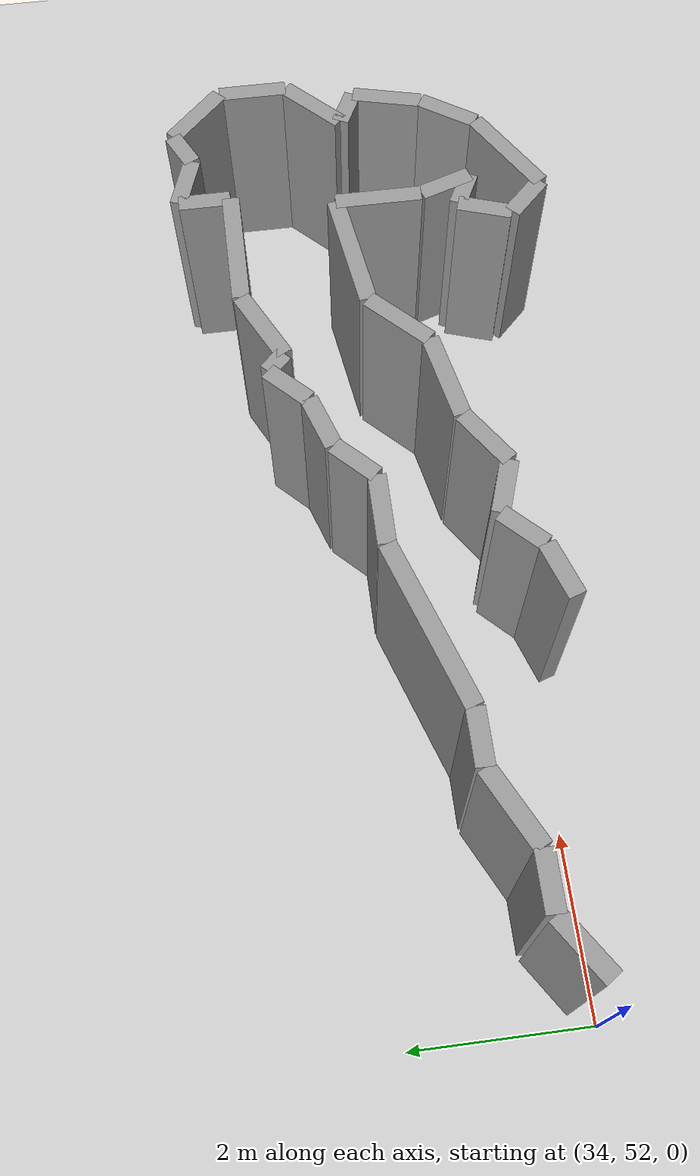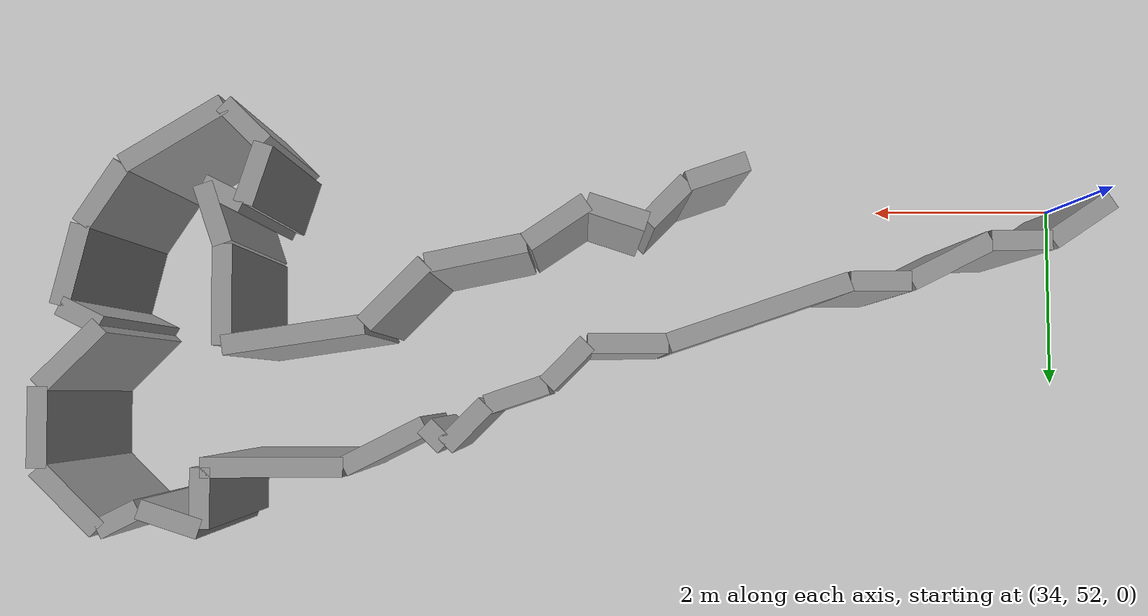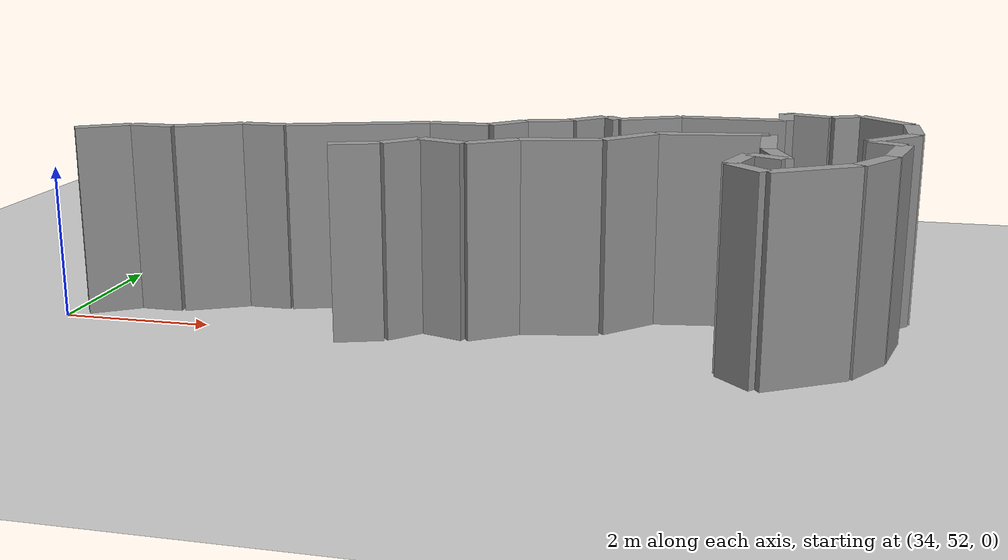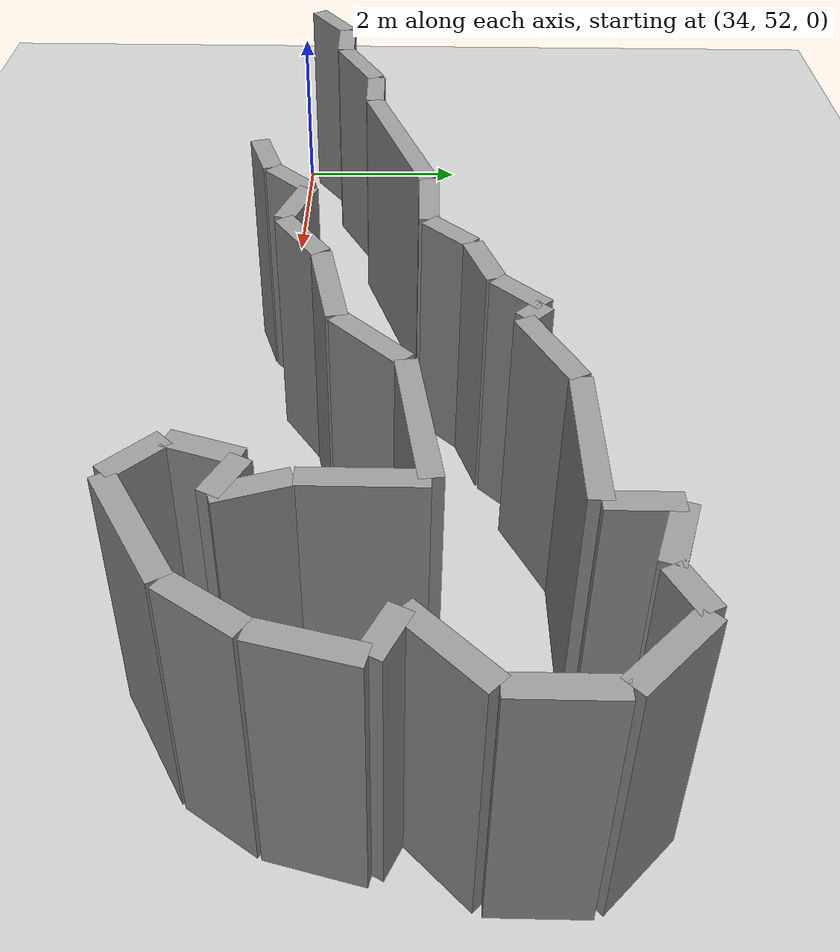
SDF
<sdf version="1.4">
 <world name="1_wall">
  <model name="ground_plane">
   <static>1</static>
   <link name="link">
    <collision name="collision">
     <geometry><plane><normal>0 0 1</normal><size>1000 1000</size></plane></geometry>
     <surface><friction><ode><mu>100</mu><mu2>50</mu2></ode></friction></surface>
    </collision>
    <visual name="visual">
     <cast_shadows>0</cast_shadows>
     <geometry><plane><normal>0 0 1</normal><size>10000 10000</size></plane></geometry>
     <material>
      <script><uri>file://media/materials/scripts/gazebo.material</uri><name>Gazebo/Grey</name></script>
     </material>
    </visual>
    <velocity_decay><linear>0</linear><angular>0</angular></velocity_decay>
   </link>
  </model>
  <model name="Wall_517">
   <static>1</static>
   <link name="Wall_517">
    <collision name="Wall_Collision_517">
     <geometry><box><size>0.632455532034 0.2 2.5</size></box></geometry>
     <pose>0 0 1.25 0 -0 0</pose>
    </collision>
    <visual name="Wall_Visual_517">
     <pose>0 0 1.25 0 -0 0</pose>
     <geometry><box><size>0.632455532034 0.2 2.5</size></box></geometry>
     <material>
      <script><uri>file://media/materials/scripts/gazebo.material</uri><name>Gazebo/Grey</name></script>
     </material>
    </visual>
    <velocity_decay><linear>0</linear><angular>0</angular></velocity_decay>
    <pose>38.1 51.9 0 0 0 0.321750554397</pose>
   </link>
  </model>
  <model name="Wall_518">
   <static>1</static>
   <link name="Wall_518">
    <collision name="Wall_Collision_518">
     <geometry><box><size>0.565685424949 0.2 2.5</size></box></geometry>
     <pose>0 0 1.25 0 -0 0</pose>
    </collision>
    <visual name="Wall_Visual_518">
     <pose>0 0 1.25 0 -0 0</pose>
     <geometry><box><size>0.565685424949 0.2 2.5</size></box></geometry>
     <material>
      <script><uri>file://media/materials/scripts/gazebo.material</uri><name>Gazebo/Grey</name></script>
     </material>
    </visual>
    <velocity_decay><linear>0</linear><angular>0</angular></velocity_decay>
    <pose>38.6 52.2 0 0 0 0.785398163397</pose>
   </link>
  </model>
  <model name="Wall_519">
   <static>1</static>
   <link name="Wall_519">
    <collision name="Wall_Collision_519">
     <geometry><box><size>0.632455532034 0.2 2.5</size></box></geometry>
     <pose>0 0 1.25 0 -0 0</pose>
    </collision>
    <visual name="Wall_Visual_519">
     <pose>0 0 1.25 0 -0 0</pose>
     <geometry><box><size>0.632455532034 0.2 2.5</size></box></geometry>
     <material>
      <script><uri>file://media/materials/scripts/gazebo.material</uri><name>Gazebo/Grey</name></script>
     </material>
    </visual>
    <velocity_decay><linear>0</linear><angular>0</angular></velocity_decay>
    <pose>39.1 52.3 0 0 0 -0.321750554397</pose>
   </link>
  </model>
  <model name="Wall_520">
   <static>1</static>
   <link name="Wall_520">
    <collision name="Wall_Collision_520">
     <geometry><box><size>0.721110255093 0.2 2.5</size></box></geometry>
     <pose>0 0 1.25 0 -0 0</pose>
    </collision>
    <visual name="Wall_Visual_520">
     <pose>0 0 1.25 0 -0 0</pose>
     <geometry><box><size>0.721110255093 0.2 2.5</size></box></geometry>
     <material>
      <script><uri>file://media/materials/scripts/gazebo.material</uri><name>Gazebo/Grey</name></script>
     </material>
    </visual>
    <velocity_decay><linear>0</linear><angular>0</angular></velocity_decay>
    <pose>39.7 52.4 0 0 0 0.588002603548</pose>
   </link>
  </model>
  <model name="Wall_521">
   <static>1</static>
   <link name="Wall_521">
    <collision name="Wall_Collision_521">
     <geometry><box><size>1.01980390272 0.2 2.5</size></box></geometry>
     <pose>0 0 1.25 0 -0 0</pose>
    </collision>
    <visual name="Wall_Visual_521">
     <pose>0 0 1.25 0 -0 0</pose>
     <geometry><box><size>1.01980390272 0.2 2.5</size></box></geometry>
     <material>
      <script><uri>file://media/materials/scripts/gazebo.material</uri><name>Gazebo/Grey</name></script>
     </material>
    </visual>
    <velocity_decay><linear>0</linear><angular>0</angular></velocity_decay>
    <pose>40.5 52.7 0 0 0 0.19739555985</pose>
   </link>
  </model>
  <model name="Wall_522">
   <static>1</static>
   <link name="Wall_522">
    <collision name="Wall_Collision_522">
     <geometry><box><size>0.848528137424 0.2 2.5</size></box></geometry>
     <pose>0 0 1.25 0 -0 0</pose>
    </collision>
    <visual name="Wall_Visual_522">
     <pose>0 0 1.25 0 -0 0</pose>
     <geometry><box><size>0.848528137424 0.2 2.5</size></box></geometry>
     <material>
      <script><uri>file://media/materials/scripts/gazebo.material</uri><name>Gazebo/Grey</name></script>
     </material>
    </visual>
    <velocity_decay><linear>0</linear><angular>0</angular></velocity_decay>
    <pose>41.3 53.1 0 0 0 0.785398163397</pose>
   </link>
  </model>
  <model name="Wall_523">
   <static>1</static>
   <link name="Wall_523">
    <collision name="Wall_Collision_523">
     <geometry><box><size>1.41421356237 0.2 2.5</size></box></geometry>
     <pose>0 0 1.25 0 -0 0</pose>
    </collision>
    <visual name="Wall_Visual_523">
     <pose>0 0 1.25 0 -0 0</pose>
     <geometry><box><size>1.41421356237 0.2 2.5</size></box></geometry>
     <material>
      <script><uri>file://media/materials/scripts/gazebo.material</uri><name>Gazebo/Grey</name></script>
     </material>
    </visual>
    <velocity_decay><linear>0</linear><angular>0</angular></velocity_decay>
    <pose>42.3 53.5 0 0 0 0.141897054604</pose>
   </link>
  </model>
  <model name="Wall_524">
   <static>1</static>
   <link name="Wall_524">
    <collision name="Wall_Collision_524">
     <geometry><box><size>1.0 0.2 2.5</size></box></geometry>
     <pose>0 0 1.25 0 -0 0</pose>
    </collision>
    <visual name="Wall_Visual_524">
     <pose>0 0 1.25 0 -0 0</pose>
     <geometry><box><size>1.0 0.2 2.5</size></box></geometry>
     <material>
      <script><uri>file://media/materials/scripts/gazebo.material</uri><name>Gazebo/Grey</name></script>
     </material>
    </visual>
    <velocity_decay><linear>0</linear><angular>0</angular></velocity_decay>
    <pose>43.0 53.1 0 0 0 -1.57079632679</pose>
   </link>
  </model>
  <model name="Wall_525">
   <static>1</static>
   <link name="Wall_525">
    <collision name="Wall_Collision_525">
     <geometry><box><size>0.632455532034 0.2 2.5</size></box></geometry>
     <pose>0 0 1.25 0 -0 0</pose>
    </collision>
    <visual name="Wall_Visual_525">
     <pose>0 0 1.25 0 -0 0</pose>
     <geometry><box><size>0.632455532034 0.2 2.5</size></box></geometry>
     <material>
      <script><uri>file://media/materials/scripts/gazebo.material</uri><name>Gazebo/Grey</name></script>
     </material>
    </visual>
    <velocity_decay><linear>0</linear><angular>0</angular></velocity_decay>
    <pose>43.1 52.3 0 0 0 -1.2490457724</pose>
   </link>
  </model>
  <model name="Wall_526">
   <static>1</static>
   <link name="Wall_526">
    <collision name="Wall_Collision_526">
     <geometry><box><size>0.4472135955 0.2 2.5</size></box></geometry>
     <pose>0 0 1.25 0 -0 0</pose>
    </collision>
    <visual name="Wall_Visual_526">
     <pose>0 0 1.25 0 -0 0</pose>
     <geometry><box><size>0.4472135955 0.2 2.5</size></box></geometry>
     <material>
      <script><uri>file://media/materials/scripts/gazebo.material</uri><name>Gazebo/Grey</name></script>
     </material>
    </visual>
    <velocity_decay><linear>0</linear><angular>0</angular></velocity_decay>
    <pose>43.0 52.1 0 0 0 2.67794504459</pose>
   </link>
  </model>
  <model name="Wall_527">
   <static>1</static>
   <link name="Wall_527">
    <collision name="Wall_Collision_527">
     <geometry><box><size>0.632455532034 0.2 2.5</size></box></geometry>
     <pose>0 0 1.25 0 -0 0</pose>
    </collision>
    <visual name="Wall_Visual_527">
     <pose>0 0 1.25 0 -0 0</pose>
     <geometry><box><size>0.632455532034 0.2 2.5</size></box></geometry>
     <material>
      <script><uri>file://media/materials/scripts/gazebo.material</uri><name>Gazebo/Grey</name></script>
     </material>
    </visual>
    <velocity_decay><linear>0</linear><angular>0</angular></velocity_decay>
    <pose>42.7 51.9 0 0 0 -1.89254688119</pose>
   </link>
  </model>
  <model name="Wall_528">
   <static>1</static>
   <link name="Wall_528">
    <collision name="Wall_Collision_528">
     <geometry><box><size>0.565685424949 0.2 2.5</size></box></geometry>
     <pose>0 0 1.25 0 -0 0</pose>
    </collision>
    <visual name="Wall_Visual_528">
     <pose>0 0 1.25 0 -0 0</pose>
     <geometry><box><size>0.565685424949 0.2 2.5</size></box></geometry>
     <material>
      <script><uri>file://media/materials/scripts/gazebo.material</uri><name>Gazebo/Grey</name></script>
     </material>
    </visual>
    <velocity_decay><linear>0</linear><angular>0</angular></velocity_decay>
    <pose>42.8 51.4 0 0 0 -0.785398163397</pose>
   </link>
  </model>
  <model name="Wall_529">
   <static>1</static>
   <link name="Wall_529">
    <collision name="Wall_Collision_529">
     <geometry><box><size>1.16619037897 0.2 2.5</size></box></geometry>
     <pose>0 0 1.25 0 -0 0</pose>
    </collision>
    <visual name="Wall_Visual_529">
     <pose>0 0 1.25 0 -0 0</pose>
     <geometry><box><size>1.16619037897 0.2 2.5</size></box></geometry>
     <material>
      <script><uri>file://media/materials/scripts/gazebo.material</uri><name>Gazebo/Grey</name></script>
     </material>
    </visual>
    <velocity_decay><linear>0</linear><angular>0</angular></velocity_decay>
    <pose>43.5 51.5 0 0 0 0.540419500271</pose>
   </link>
  </model>
  <model name="Wall_530">
   <static>1</static>
   <link name="Wall_530">
    <collision name="Wall_Collision_530">
     <geometry><box><size>0.721110255093 0.2 2.5</size></box></geometry>
     <pose>0 0 1.25 0 -0 0</pose>
    </collision>
    <visual name="Wall_Visual_530">
     <pose>0 0 1.25 0 -0 0</pose>
     <geometry><box><size>0.721110255093 0.2 2.5</size></box></geometry>
     <material>
      <script><uri>file://media/materials/scripts/gazebo.material</uri><name>Gazebo/Grey</name></script>
     </material>
    </visual>
    <velocity_decay><linear>0</linear><angular>0</angular></velocity_decay>
    <pose>44.2 52.1 0 0 0 0.982793723247</pose>
   </link>
  </model>
  <model name="Wall_531">
   <static>1</static>
   <link name="Wall_531">
    <collision name="Wall_Collision_531">
     <geometry><box><size>0.824621125124 0.2 2.5</size></box></geometry>
     <pose>0 0 1.25 0 -0 0</pose>
    </collision>
    <visual name="Wall_Visual_531">
     <pose>0 0 1.25 0 -0 0</pose>
     <geometry><box><size>0.824621125124 0.2 2.5</size></box></geometry>
     <material>
      <script><uri>file://media/materials/scripts/gazebo.material</uri><name>Gazebo/Grey</name></script>
     </material>
    </visual>
    <velocity_decay><linear>0</linear><angular>0</angular></velocity_decay>
    <pose>44.5 52.8 0 0 0 1.32581766367</pose>
   </link>
  </model>
  <model name="Wall_532">
   <static>1</static>
   <link name="Wall_532">
    <collision name="Wall_Collision_532">
     <geometry><box><size>0.4472135955 0.2 2.5</size></box></geometry>
     <pose>0 0 1.25 0 -0 0</pose>
    </collision>
    <visual name="Wall_Visual_532">
     <pose>0 0 1.25 0 -0 0</pose>
     <geometry><box><size>0.4472135955 0.2 2.5</size></box></geometry>
     <material>
      <script><uri>file://media/materials/scripts/gazebo.material</uri><name>Gazebo/Grey</name></script>
     </material>
    </visual>
    <velocity_decay><linear>0</linear><angular>0</angular></velocity_decay>
    <pose>44.4 53.3 0 0 0 2.67794504459</pose>
   </link>
  </model>
  <model name="Wall_533">
   <static>1</static>
   <link name="Wall_533">
    <collision name="Wall_Collision_533">
     <geometry><box><size>0.848528137424 0.2 2.5</size></box></geometry>
     <pose>0 0 1.25 0 -0 0</pose>
    </collision>
    <visual name="Wall_Visual_533">
     <pose>0 0 1.25 0 -0 0</pose>
     <geometry><box><size>0.848528137424 0.2 2.5</size></box></geometry>
     <material>
      <script><uri>file://media/materials/scripts/gazebo.material</uri><name>Gazebo/Grey</name></script>
     </material>
    </visual>
    <velocity_decay><linear>0</linear><angular>0</angular></velocity_decay>
    <pose>44.5 53.7 0 0 0 0.785398163397</pose>
   </link>
  </model>
  <model name="Wall_534">
   <static>1</static>
   <link name="Wall_534">
    <collision name="Wall_Collision_534">
     <geometry><box><size>0.8 0.2 2.5</size></box></geometry>
     <pose>0 0 1.25 0 -0 0</pose>
    </collision>
    <visual name="Wall_Visual_534">
     <pose>0 0 1.25 0 -0 0</pose>
     <geometry><box><size>0.8 0.2 2.5</size></box></geometry>
     <material>
      <script><uri>file://media/materials/scripts/gazebo.material</uri><name>Gazebo/Grey</name></script>
     </material>
    </visual>
    <velocity_decay><linear>0</linear><angular>0</angular></velocity_decay>
    <pose>44.8 54.4 0 0 0 1.57079632679</pose>
   </link>
  </model>
  <model name="Wall_535">
   <static>1</static>
   <link name="Wall_535">
    <collision name="Wall_Collision_535">
     <geometry><box><size>0.848528137424 0.2 2.5</size></box></geometry>
     <pose>0 0 1.25 0 -0 0</pose>
    </collision>
    <visual name="Wall_Visual_535">
     <pose>0 0 1.25 0 -0 0</pose>
     <geometry><box><size>0.848528137424 0.2 2.5</size></box></geometry>
     <material>
      <script><uri>file://media/materials/scripts/gazebo.material</uri><name>Gazebo/Grey</name></script>
     </material>
    </visual>
    <velocity_decay><linear>0</linear><angular>0</angular></velocity_decay>
    <pose>44.5 55.1 0 0 0 2.35619449019</pose>
   </link>
  </model>
  <model name="Wall_536">
   <static>1</static>
   <link name="Wall_536">
    <collision name="Wall_Collision_536">
     <geometry><box><size>0.4472135955 0.2 2.5</size></box></geometry>
     <pose>0 0 1.25 0 -0 0</pose>
    </collision>
    <visual name="Wall_Visual_536">
     <pose>0 0 1.25 0 -0 0</pose>
     <geometry><box><size>0.4472135955 0.2 2.5</size></box></geometry>
     <material>
      <script><uri>file://media/materials/scripts/gazebo.material</uri><name>Gazebo/Grey</name></script>
     </material>
    </visual>
    <velocity_decay><linear>0</linear><angular>0</angular></velocity_decay>
    <pose>44.0 55.3 0 0 0 -2.67794504459</pose>
   </link>
  </model>
  <model name="Wall_537">
   <static>1</static>
   <link name="Wall_537">
    <collision name="Wall_Collision_537">
     <geometry><box><size>0.632455532034 0.2 2.5</size></box></geometry>
     <pose>0 0 1.25 0 -0 0</pose>
    </collision>
    <visual name="Wall_Visual_537">
     <pose>0 0 1.25 0 -0 0</pose>
     <geometry><box><size>0.632455532034 0.2 2.5</size></box></geometry>
     <material>
      <script><uri>file://media/materials/scripts/gazebo.material</uri><name>Gazebo/Grey</name></script>
     </material>
    </visual>
    <velocity_decay><linear>0</linear><angular>0</angular></velocity_decay>
    <pose>43.5 55.3 0 0 0 2.81984209919</pose>
   </link>
  </model>
  <model name="Wall_538">
   <static>1</static>
   <link name="Wall_538">
    <collision name="Wall_Collision_538">
     <geometry><box><size>0.6 0.2 2.5</size></box></geometry>
     <pose>0 0 1.25 0 -0 0</pose>
    </collision>
    <visual name="Wall_Visual_538">
     <pose>0 0 1.25 0 -0 0</pose>
     <geometry><box><size>0.6 0.2 2.5</size></box></geometry>
     <material>
      <script><uri>file://media/materials/scripts/gazebo.material</uri><name>Gazebo/Grey</name></script>
     </material>
    </visual>
    <velocity_decay><linear>0</linear><angular>0</angular></velocity_decay>
    <pose>43.2 55.1 0 0 0 -1.57079632679</pose>
   </link>
  </model>
  <model name="Wall_539">
   <static>1</static>
   <link name="Wall_539">
    <collision name="Wall_Collision_539">
     <geometry><box><size>1.4 0.2 2.5</size></box></geometry>
     <pose>0 0 1.25 0 -0 0</pose>
    </collision>
    <visual name="Wall_Visual_539">
     <pose>0 0 1.25 0 -0 0</pose>
     <geometry><box><size>1.4 0.2 2.5</size></box></geometry>
     <material>
      <script><uri>file://media/materials/scripts/gazebo.material</uri><name>Gazebo/Grey</name></script>
     </material>
    </visual>
    <velocity_decay><linear>0</linear><angular>0</angular></velocity_decay>
    <pose>42.5 54.8 0 0 0 3.14159265359</pose>
   </link>
  </model>
  <model name="Wall_540">
   <static>1</static>
   <link name="Wall_540">
    <collision name="Wall_Collision_540">
     <geometry><box><size>0.894427191 0.2 2.5</size></box></geometry>
     <pose>0 0 1.25 0 -0 0</pose>
    </collision>
    <visual name="Wall_Visual_540">
     <pose>0 0 1.25 0 -0 0</pose>
     <geometry><box><size>0.894427191 0.2 2.5</size></box></geometry>
     <material>
      <script><uri>file://media/materials/scripts/gazebo.material</uri><name>Gazebo/Grey</name></script>
     </material>
    </visual>
    <velocity_decay><linear>0</linear><angular>0</angular></velocity_decay>
    <pose>41.4 54.6 0 0 0 -2.67794504459</pose>
   </link>
  </model>
  <model name="Wall_541">
   <static>1</static>
   <link name="Wall_541">
    <collision name="Wall_Collision_541">
     <geometry><box><size>0.282842712475 0.2 2.5</size></box></geometry>
     <pose>0 0 1.25 0 -0 0</pose>
    </collision>
    <visual name="Wall_Visual_541">
     <pose>0 0 1.25 0 -0 0</pose>
     <geometry><box><size>0.282842712475 0.2 2.5</size></box></geometry>
     <material>
      <script><uri>file://media/materials/scripts/gazebo.material</uri><name>Gazebo/Grey</name></script>
     </material>
    </visual>
    <velocity_decay><linear>0</linear><angular>0</angular></velocity_decay>
    <pose>40.9 54.5 0 0 0 2.35619449019</pose>
   </link>
  </model>
  <model name="Wall_542">
   <static>1</static>
   <link name="Wall_542">
    <collision name="Wall_Collision_542">
     <geometry><box><size>0.565685424949 0.2 2.5</size></box></geometry>
     <pose>0 0 1.25 0 -0 0</pose>
    </collision>
    <visual name="Wall_Visual_542">
     <pose>0 0 1.25 0 -0 0</pose>
     <geometry><box><size>0.565685424949 0.2 2.5</size></box></geometry>
     <material>
      <script><uri>file://media/materials/scripts/gazebo.material</uri><name>Gazebo/Grey</name></script>
     </material>
    </visual>
    <velocity_decay><linear>0</linear><angular>0</angular></velocity_decay>
    <pose>40.6 54.4 0 0 0 -2.35619449019</pose>
   </link>
  </model>
  <model name="Wall_543">
   <static>1</static>
   <link name="Wall_543">
    <collision name="Wall_Collision_543">
     <geometry><box><size>0.632455532034 0.2 2.5</size></box></geometry>
     <pose>0 0 1.25 0 -0 0</pose>
    </collision>
    <visual name="Wall_Visual_543">
     <pose>0 0 1.25 0 -0 0</pose>
     <geometry><box><size>0.632455532034 0.2 2.5</size></box></geometry>
     <material>
      <script><uri>file://media/materials/scripts/gazebo.material</uri><name>Gazebo/Grey</name></script>
     </material>
    </visual>
    <velocity_decay><linear>0</linear><angular>0</angular></velocity_decay>
    <pose>40.1 54.1 0 0 0 -2.81984209919</pose>
   </link>
  </model>
  <model name="Wall_544">
   <static>1</static>
   <link name="Wall_544">
    <collision name="Wall_Collision_544">
     <geometry><box><size>0.565685424949 0.2 2.5</size></box></geometry>
     <pose>0 0 1.25 0 -0 0</pose>
    </collision>
    <visual name="Wall_Visual_544">
     <pose>0 0 1.25 0 -0 0</pose>
     <geometry><box><size>0.565685424949 0.2 2.5</size></box></geometry>
     <material>
      <script><uri>file://media/materials/scripts/gazebo.material</uri><name>Gazebo/Grey</name></script>
     </material>
    </visual>
    <velocity_decay><linear>0</linear><angular>0</angular></velocity_decay>
    <pose>39.6 53.8 0 0 0 -2.35619449019</pose>
   </link>
  </model>
  <model name="Wall_545">
   <static>1</static>
   <link name="Wall_545">
    <collision name="Wall_Collision_545">
     <geometry><box><size>0.8 0.2 2.5</size></box></geometry>
     <pose>0 0 1.25 0 -0 0</pose>
    </collision>
    <visual name="Wall_Visual_545">
     <pose>0 0 1.25 0 -0 0</pose>
     <geometry><box><size>0.8 0.2 2.5</size></box></geometry>
     <material>
      <script><uri>file://media/materials/scripts/gazebo.material</uri><name>Gazebo/Grey</name></script>
     </material>
    </visual>
    <velocity_decay><linear>0</linear><angular>0</angular></velocity_decay>
    <pose>39.0 53.6 0 0 0 3.14159265359</pose>
   </link>
  </model>
  <model name="Wall_546">
   <static>1</static>
   <link name="Wall_546">
    <collision name="Wall_Collision_546">
     <geometry><box><size>1.8973665961 0.2 2.5</size></box></geometry>
     <pose>0 0 1.25 0 -0 0</pose>
    </collision>
    <visual name="Wall_Visual_546">
     <pose>0 0 1.25 0 -0 0</pose>
     <geometry><box><size>1.8973665961 0.2 2.5</size></box></geometry>
     <material>
      <script><uri>file://media/materials/scripts/gazebo.material</uri><name>Gazebo/Grey</name></script>
     </material>
    </visual>
    <velocity_decay><linear>0</linear><angular>0</angular></velocity_decay>
    <pose>37.7 53.3 0 0 0 -2.81984209919</pose>
   </link>
  </model>
  <model name="Wall_547">
   <static>1</static>
   <link name="Wall_547">
    <collision name="Wall_Collision_547">
     <geometry><box><size>0.6 0.2 2.5</size></box></geometry>
     <pose>0 0 1.25 0 -0 0</pose>
    </collision>
    <visual name="Wall_Visual_547">
     <pose>0 0 1.25 0 -0 0</pose>
     <geometry><box><size>0.6 0.2 2.5</size></box></geometry>
     <material>
      <script><uri>file://media/materials/scripts/gazebo.material</uri><name>Gazebo/Grey</name></script>
     </material>
    </visual>
    <velocity_decay><linear>0</linear><angular>0</angular></velocity_decay>
    <pose>36.5 53.0 0 0 0 3.14159265359</pose>
   </link>
  </model>
  <model name="Wall_548">
   <static>1</static>
   <link name="Wall_548">
    <collision name="Wall_Collision_548">
     <geometry><box><size>0.894427191 0.2 2.5</size></box></geometry>
     <pose>0 0 1.25 0 -0 0</pose>
    </collision>
    <visual name="Wall_Visual_548">
     <pose>0 0 1.25 0 -0 0</pose>
     <geometry><box><size>0.894427191 0.2 2.5</size></box></geometry>
     <material>
      <script><uri>file://media/materials/scripts/gazebo.material</uri><name>Gazebo/Grey</name></script>
     </material>
    </visual>
    <velocity_decay><linear>0</linear><angular>0</angular></velocity_decay>
    <pose>35.8 52.8 0 0 0 -2.67794504459</pose>
   </link>
  </model>
  <model name="Wall_549">
   <static>1</static>
   <link name="Wall_549">
    <collision name="Wall_Collision_549">
     <geometry><box><size>0.6 0.2 2.5</size></box></geometry>
     <pose>0 0 1.25 0 -0 0</pose>
    </collision>
    <visual name="Wall_Visual_549">
     <pose>0 0 1.25 0 -0 0</pose>
     <geometry><box><size>0.6 0.2 2.5</size></box></geometry>
     <material>
      <script><uri>file://media/materials/scripts/gazebo.material</uri><name>Gazebo/Grey</name></script>
     </material>
    </visual>
    <velocity_decay><linear>0</linear><angular>0</angular></velocity_decay>
    <pose>35.1 52.6 0 0 0 3.14159265359</pose>
   </link>
  </model>
  <model name="Wall_550">
   <static>1</static>
   <link name="Wall_550">
    <collision name="Wall_Collision_550">
     <geometry><box><size>0.721110255093 0.2 2.5</size></box></geometry>
     <pose>0 0 1.25 0 -0 0</pose>
    </collision>
    <visual name="Wall_Visual_550">
     <pose>0 0 1.25 0 -0 0</pose>
     <geometry><box><size>0.721110255093 0.2 2.5</size></box></geometry>
     <material>
      <script><uri>file://media/materials/scripts/gazebo.material</uri><name>Gazebo/Grey</name></script>
     </material>
    </visual>
    <velocity_decay><linear>0</linear><angular>0</angular></velocity_decay>
    <pose>34.5 52.4 0 0 0 -2.55359005004</pose>
   </link>
  </model>
 </world>
</sdf>
